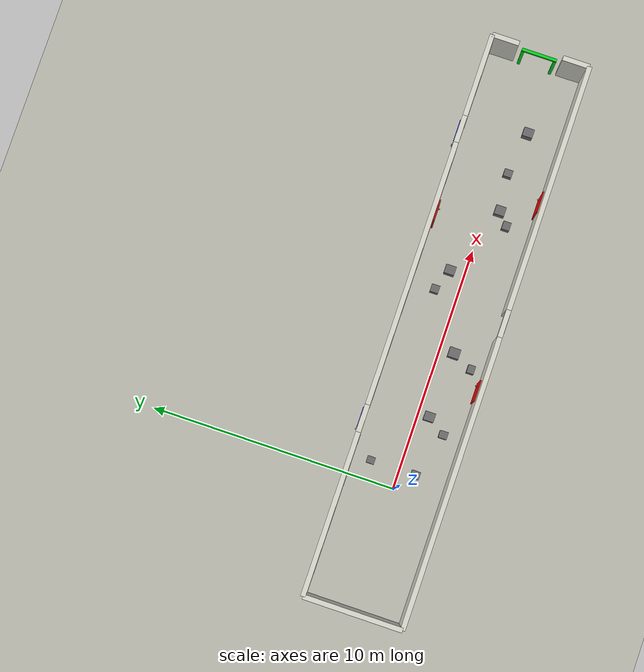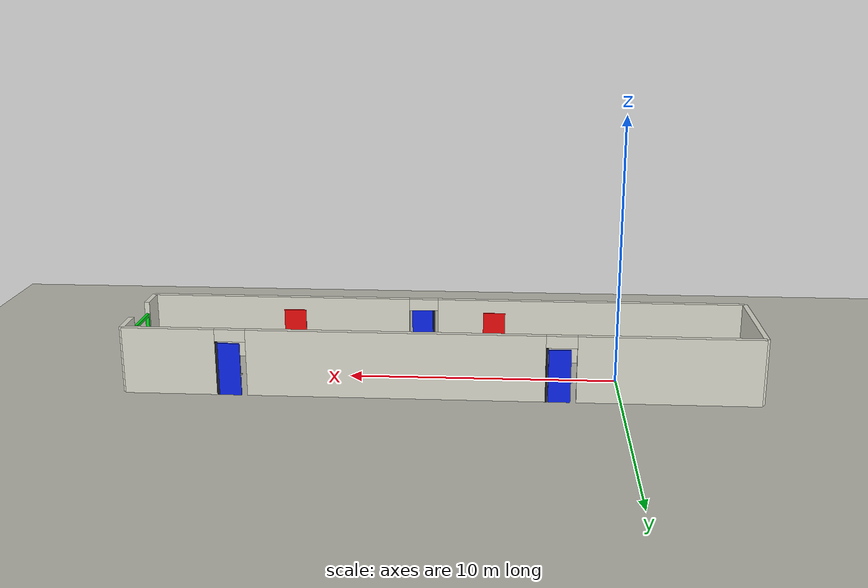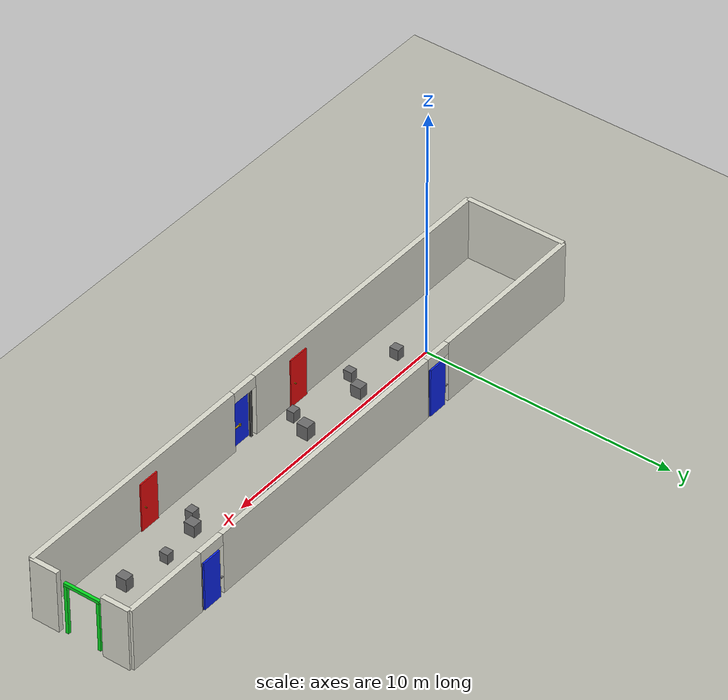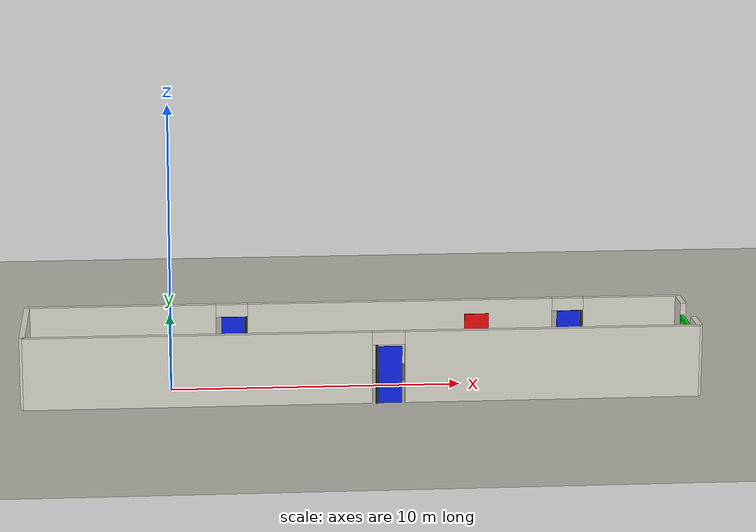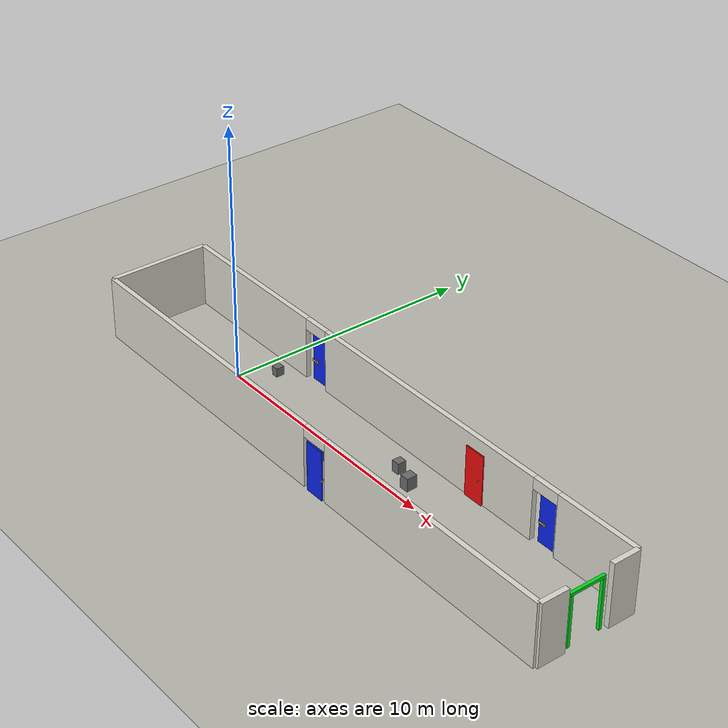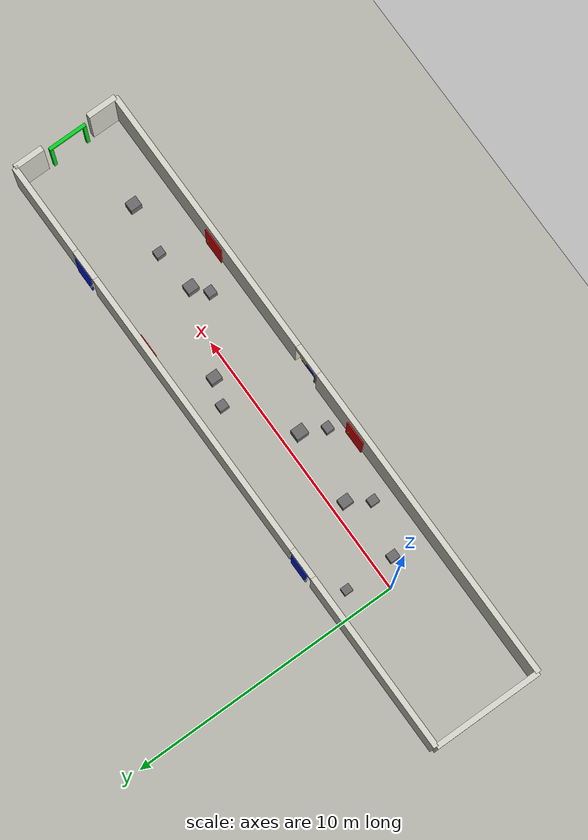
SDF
<?xml version='1.0' encoding='utf-8'?>
<sdf version="1.6">
  <world name="fire_corridor">
    <physics name="default_physics" type="ode">
      <max_step_size>0.001</max_step_size>
      <real_time_update_rate>1000</real_time_update_rate>
    </physics>
    <plugin name="gz::sim::systems::Physics" filename="gz-sim-physics-system" />
    <plugin name="gz::sim::systems::UserCommands" filename="gz-sim-user-commands-system" />
    <plugin name="gz::sim::systems::SceneBroadcaster" filename="gz-sim-scene-broadcaster-system" />
    <plugin name="gz::sim::systems::Sensors" filename="gz-sim-sensors-system">
      <render_engine>ogre2</render_engine>
    </plugin>
    <light type="directional" name="sun">
      <cast_shadows>true</cast_shadows>
      <pose>6 0 10 0 0 0</pose>
      <diffuse>0.9 0.9 0.9 1</diffuse>
      <specular>0.3 0.3 0.3 1</specular>
      <direction>-0.5 0.1 -1</direction>
    </light>
    <light type="point" name="light_mid">
      <pose>8 0 2.8 0 0 0</pose>
      <diffuse>0.8 0.8 0.8 1</diffuse>
      <specular>0.1 0.1 0.1 1</specular>
      <attenuation>
        <range>16</range>
        <linear>0.05</linear>
      </attenuation>
    </light>
    <model name="ground_plane">
      <static>true</static>
      <link name="link">
        <collision name="col">
          <geometry>
            <plane>
              <normal>0 0 1</normal>
              <size>30 10</size>
            </plane>
          </geometry>
        </collision>
        <visual name="vis">
          <geometry>
            <plane>
              <normal>0 0 1</normal>
              <size>30 10</size>
            </plane>
          </geometry>
          <material>
            <ambient>0.72 0.72 0.68 1</ambient>
            <diffuse>0.72 0.72 0.68 1</diffuse>
          </material>
        </visual>
      </link>
    </model>
    <model name="wall_south">
      <static>true</static>
      <pose>6.5 -2 1.25 0 0 0</pose>
      <link name="link">
        <collision name="collision_wall_0">
          <geometry>
            <box>
              <size>11.788571 0.200000 2.500000</size>
            </box>
          </geometry>
          <pose>-5.605714 0 0.000000 0 0 0</pose>
        </collision>
        <visual name="visual_wall_0">
          <geometry>
            <box>
              <size>11.788571 0.200000 2.500000</size>
            </box>
          </geometry>
          <material>
            <ambient>0.85 0.85 0.80 1</ambient>
            <diffuse>0.85 0.85 0.80 1</diffuse>
          </material>
          <pose>-5.605714 0 0.000000 0 0 0</pose>
        </visual>
        <collision name="collision_lintel_0">
          <geometry>
            <box>
              <size>1.116429 0.200000 0.450000</size>
            </box>
          </geometry>
          <pose>0.846786 0 1.025000 0 0 0</pose>
        </collision>
        <visual name="visual_lintel_0">
          <geometry>
            <box>
              <size>1.116429 0.200000 0.450000</size>
            </box>
          </geometry>
          <material>
            <ambient>0.85 0.85 0.80 1</ambient>
            <diffuse>0.85 0.85 0.80 1</diffuse>
          </material>
          <pose>0.846786 0 1.025000 0 0 0</pose>
        </visual>
        <collision name="collision_wall_end">
          <geometry>
            <box>
              <size>10.095000 0.200000 2.500000</size>
            </box>
          </geometry>
          <pose>6.452500 0 0.000000 0 0 0</pose>
        </collision>
        <visual name="visual_wall_end">
          <geometry>
            <box>
              <size>10.095000 0.200000 2.500000</size>
            </box>
          </geometry>
          <material>
            <ambient>0.85 0.85 0.80 1</ambient>
            <diffuse>0.85 0.85 0.80 1</diffuse>
          </material>
          <pose>6.452500 0 0.000000 0 0 0</pose>
        </visual>
      </link>
    </model>
    <model name="wall_north">
      <static>true</static>
      <pose>6.5 2 1.25 0 0 0</pose>
      <link name="link">
        <collision name="collision_wall_0">
          <geometry>
            <box>
              <size>6.588571 0.200000 2.500000</size>
            </box>
          </geometry>
          <pose>-8.205714 0 0.000000 0 0 0</pose>
        </collision>
        <visual name="visual_wall_0">
          <geometry>
            <box>
              <size>6.588571 0.200000 2.500000</size>
            </box>
          </geometry>
          <material>
            <ambient>0.85 0.85 0.80 1</ambient>
            <diffuse>0.85 0.85 0.80 1</diffuse>
          </material>
          <pose>-8.205714 0 0.000000 0 0 0</pose>
        </visual>
        <collision name="collision_lintel_0">
          <geometry>
            <box>
              <size>1.116429 0.200000 0.450000</size>
            </box>
          </geometry>
          <pose>-4.353214 0 1.025000 0 0 0</pose>
        </collision>
        <visual name="visual_lintel_0">
          <geometry>
            <box>
              <size>1.116429 0.200000 0.450000</size>
            </box>
          </geometry>
          <material>
            <ambient>0.85 0.85 0.80 1</ambient>
            <diffuse>0.85 0.85 0.80 1</diffuse>
          </material>
          <pose>-4.353214 0 1.025000 0 0 0</pose>
        </visual>
        <collision name="collision_wall_1">
          <geometry>
            <box>
              <size>10.783571 0.200000 2.500000</size>
            </box>
          </geometry>
          <pose>1.596786 0 0.000000 0 0 0</pose>
        </collision>
        <visual name="visual_wall_1">
          <geometry>
            <box>
              <size>10.783571 0.200000 2.500000</size>
            </box>
          </geometry>
          <material>
            <ambient>0.85 0.85 0.80 1</ambient>
            <diffuse>0.85 0.85 0.80 1</diffuse>
          </material>
          <pose>1.596786 0 0.000000 0 0 0</pose>
        </visual>
        <collision name="collision_lintel_1">
          <geometry>
            <box>
              <size>1.116429 0.200000 0.450000</size>
            </box>
          </geometry>
          <pose>7.546786 0 1.025000 0 0 0</pose>
        </collision>
        <visual name="visual_lintel_1">
          <geometry>
            <box>
              <size>1.116429 0.200000 0.450000</size>
            </box>
          </geometry>
          <material>
            <ambient>0.85 0.85 0.80 1</ambient>
            <diffuse>0.85 0.85 0.80 1</diffuse>
          </material>
          <pose>7.546786 0 1.025000 0 0 0</pose>
        </visual>
        <collision name="collision_wall_end">
          <geometry>
            <box>
              <size>3.395000 0.200000 2.500000</size>
            </box>
          </geometry>
          <pose>9.802500 0 0.000000 0 0 0</pose>
        </collision>
        <visual name="visual_wall_end">
          <geometry>
            <box>
              <size>3.395000 0.200000 2.500000</size>
            </box>
          </geometry>
          <material>
            <ambient>0.85 0.85 0.80 1</ambient>
            <diffuse>0.85 0.85 0.80 1</diffuse>
          </material>
          <pose>9.802500 0 0.000000 0 0 0</pose>
        </visual>
      </link>
    </model>
    <model name="wall_west">
      <static>true</static>
      <pose>-5 0 1.25 0 0 0</pose>
      <link name="link">
        <collision name="col">
          <geometry>
            <box>
              <size>0.2 4 2.5</size>
            </box>
          </geometry>
        </collision>
        <visual name="vis">
          <geometry>
            <box>
              <size>0.2 4 2.5</size>
            </box>
          </geometry>
          <material>
            <ambient>0.85 0.85 0.80 1</ambient>
            <diffuse>0.85 0.85 0.80 1</diffuse>
          </material>
        </visual>
      </link>
    </model>
    <model name="wall_east_upper">
      <static>true</static>
      <pose>18 1.45 1.25 0 0 0</pose>
      <link name="link">
        <collision name="col">
          <geometry>
            <box>
              <size>0.2 1.1 2.5</size>
            </box>
          </geometry>
        </collision>
        <visual name="vis">
          <geometry>
            <box>
              <size>0.2 1.1 2.5</size>
            </box>
          </geometry>
          <material>
            <ambient>0.85 0.85 0.80 1</ambient>
            <diffuse>0.85 0.85 0.80 1</diffuse>
          </material>
        </visual>
      </link>
    </model>
    <model name="wall_east_lower">
      <static>true</static>
      <pose>18 -1.45 1.25 0 0 0</pose>
      <link name="link">
        <collision name="col">
          <geometry>
            <box>
              <size>0.2 1.1 2.5</size>
            </box>
          </geometry>
        </collision>
        <visual name="vis">
          <geometry>
            <box>
              <size>0.2 1.1 2.5</size>
            </box>
          </geometry>
          <material>
            <ambient>0.85 0.85 0.80 1</ambient>
            <diffuse>0.85 0.85 0.80 1</diffuse>
          </material>
        </visual>
      </link>
    </model>
    <model name="door_red1">
      <static>true</static>
      <pose>4.60 -1.86 1.0 0 0 0</pose>
      <link name="link">
        <visual name="panel">
          <geometry>
            <box>
              <size>0.85 0.045 2.0</size>
            </box>
          </geometry>
          <material>
            <ambient>0.92 0.04 0.04 1</ambient>
            <diffuse>0.92 0.04 0.04 1</diffuse>
          </material>
        </visual>
      </link>
    </model>
    <model name="handle_red1">
      <static>true</static>
      <pose>4.84 -1.82 0.95 1.5708 0 0</pose>
      <link name="link">
        <visual name="handle">
          <geometry>
            <cylinder>
              <radius>0.018</radius>
              <length>0.13</length>
            </cylinder>
          </geometry>
          <material>
            <ambient>0.75 0.60 0.05 1</ambient>
            <diffuse>0.75 0.60 0.05 1</diffuse>
          </material>
        </visual>
      </link>
    </model>
    <model name="door_red2">
      <static>true</static>
      <pose>10.80 1.86 1.0 0 0 0</pose>
      <link name="link">
        <visual name="panel">
          <geometry>
            <box>
              <size>0.85 0.045 2.0</size>
            </box>
          </geometry>
          <material>
            <ambient>0.92 0.04 0.04 1</ambient>
            <diffuse>0.92 0.04 0.04 1</diffuse>
          </material>
        </visual>
      </link>
    </model>
    <model name="handle_red2">
      <static>true</static>
      <pose>11.04 1.82 0.95 1.5708 0 0</pose>
      <link name="link">
        <visual name="handle">
          <geometry>
            <cylinder>
              <radius>0.018</radius>
              <length>0.13</length>
            </cylinder>
          </geometry>
          <material>
            <ambient>0.75 0.60 0.05 1</ambient>
            <diffuse>0.75 0.60 0.05 1</diffuse>
          </material>
        </visual>
      </link>
    </model>
    <model name="door_red3">
      <static>true</static>
      <pose>12.40 -1.86 1.0 0 0 0</pose>
      <link name="link">
        <visual name="panel">
          <geometry>
            <box>
              <size>0.85 0.045 2.0</size>
            </box>
          </geometry>
          <material>
            <ambient>0.92 0.04 0.04 1</ambient>
            <diffuse>0.92 0.04 0.04 1</diffuse>
          </material>
        </visual>
      </link>
    </model>
    <model name="handle_red3">
      <static>true</static>
      <pose>12.64 -1.82 0.95 1.5708 0 0</pose>
      <link name="link">
        <visual name="handle">
          <geometry>
            <cylinder>
              <radius>0.018</radius>
              <length>0.13</length>
            </cylinder>
          </geometry>
          <material>
            <ambient>0.75 0.60 0.05 1</ambient>
            <diffuse>0.75 0.60 0.05 1</diffuse>
          </material>
        </visual>
      </link>
    </model>
    <model name="exit_green">
      <static>true</static>
      <pose>17.92 0 1.0 0 0 0</pose>
      <link name="link">
        <visual name="jamb_left">
          <pose>0.0 0.66 0.0 0.0 0.0 0.0</pose>
          <geometry>
            <box>
              <size>0.12 0.12 2.0</size>
            </box>
          </geometry>
          <material>
            <ambient>0.02 0.85 0.12 1</ambient>
            <diffuse>0.02 0.85 0.12 1</diffuse>
          </material>
        </visual>
        <collision name="jamb_left">
          <pose>0.0 0.66 0.0 0.0 0.0 0.0</pose>
          <geometry>
            <box>
              <size>0.12 0.12 2.0</size>
            </box>
          </geometry>
        </collision>
        <visual name="jamb_right">
          <pose>0.0 -0.66 0.0 0.0 0.0 0.0</pose>
          <geometry>
            <box>
              <size>0.12 0.12 2.0</size>
            </box>
          </geometry>
          <material>
            <ambient>0.02 0.85 0.12 1</ambient>
            <diffuse>0.02 0.85 0.12 1</diffuse>
          </material>
        </visual>
        <collision name="jamb_right">
          <pose>0.0 -0.66 0.0 0.0 0.0 0.0</pose>
          <geometry>
            <box>
              <size>0.12 0.12 2.0</size>
            </box>
          </geometry>
        </collision>
        <visual name="lintel">
          <pose>0.0 0.0 1.06 0.0 0.0 0.0</pose>
          <geometry>
            <box>
              <size>0.12 1.44 0.12</size>
            </box>
          </geometry>
          <material>
            <ambient>0.02 0.85 0.12 1</ambient>
            <diffuse>0.02 0.85 0.12 1</diffuse>
          </material>
        </visual>
        <collision name="lintel">
          <pose>0.0 0.0 1.06 0.0 0.0 0.0</pose>
          <geometry>
            <box>
              <size>0.12 1.44 0.12</size>
            </box>
          </geometry>
        </collision>
      </link>
    </model>
    <model name="v5_center_block_00_start">
      <static>true</static>
      <pose>0.80 -0.65 0.22 0 0 0</pose>
      <link name="link">
        <collision name="col">
          <geometry>
            <box>
              <size>0.32 0.36 0.44</size>
            </box>
          </geometry>
        </collision>
        <visual name="vis">
          <geometry>
            <box>
              <size>0.32 0.36 0.44</size>
            </box>
          </geometry>
          <material>
            <ambient>0.42 0.42 0.42 1</ambient>
            <diffuse>0.42 0.42 0.42 1</diffuse>
          </material>
        </visual>
      </link>
    </model>
    <model name="v5_center_block_01_pre_blue1">
      <static>true</static>
      <pose>3.15 -0.45 0.24 0 0 0</pose>
      <link name="link">
        <collision name="col">
          <geometry>
            <box>
              <size>0.36 0.42 0.48</size>
            </box>
          </geometry>
        </collision>
        <visual name="vis">
          <geometry>
            <box>
              <size>0.36 0.42 0.48</size>
            </box>
          </geometry>
          <material>
            <ambient>0.42 0.42 0.42 1</ambient>
            <diffuse>0.42 0.42 0.42 1</diffuse>
          </material>
        </visual>
      </link>
    </model>
    <model name="v5_center_block_02_between_blue1_blue2">
      <static>true</static>
      <pose>5.85 -0.58 0.28 0 0 0</pose>
      <link name="link">
        <collision name="col">
          <geometry>
            <box>
              <size>0.40 0.45 0.56</size>
            </box>
          </geometry>
        </collision>
        <visual name="vis">
          <geometry>
            <box>
              <size>0.40 0.45 0.56</size>
            </box>
          </geometry>
          <material>
            <ambient>0.42 0.42 0.42 1</ambient>
            <diffuse>0.42 0.42 0.42 1</diffuse>
          </material>
        </visual>
      </link>
    </model>
    <model name="v5_center_block_03_pre_blue2">
      <static>true</static>
      <pose>8.95 0.62 0.26 0 0 0</pose>
      <link name="link">
        <collision name="col">
          <geometry>
            <box>
              <size>0.36 0.42 0.52</size>
            </box>
          </geometry>
        </collision>
        <visual name="vis">
          <geometry>
            <box>
              <size>0.36 0.42 0.52</size>
            </box>
          </geometry>
          <material>
            <ambient>0.42 0.42 0.42 1</ambient>
            <diffuse>0.42 0.42 0.42 1</diffuse>
          </material>
        </visual>
      </link>
    </model>
    <model name="v5_center_block_04_between_blue2_blue3">
      <static>true</static>
      <pose>11.85 -0.52 0.24 0 0 0</pose>
      <link name="link">
        <collision name="col">
          <geometry>
            <box>
              <size>0.38 0.42 0.48</size>
            </box>
          </geometry>
        </collision>
        <visual name="vis">
          <geometry>
            <box>
              <size>0.38 0.42 0.48</size>
            </box>
          </geometry>
          <material>
            <ambient>0.42 0.42 0.42 1</ambient>
            <diffuse>0.42 0.42 0.42 1</diffuse>
          </material>
        </visual>
      </link>
    </model>
    <model name="v5_center_block_05_after_blue3">
      <static>true</static>
      <pose>15.20 -0.60 0.26 0 0 0</pose>
      <link name="link">
        <collision name="col">
          <geometry>
            <box>
              <size>0.36 0.42 0.52</size>
            </box>
          </geometry>
        </collision>
        <visual name="vis">
          <geometry>
            <box>
              <size>0.36 0.42 0.52</size>
            </box>
          </geometry>
          <material>
            <ambient>0.42 0.42 0.42 1</ambient>
            <diffuse>0.42 0.42 0.42 1</diffuse>
          </material>
        </visual>
      </link>
    </model>
    <model name="v5_side_clutter_01_right">
      <static>true</static>
      <pose>0.80 1.20 0.18 0 0 0</pose>
      <link name="link">
        <collision name="col">
          <geometry>
            <box>
              <size>0.28 0.32 0.36</size>
            </box>
          </geometry>
        </collision>
        <visual name="vis">
          <geometry>
            <box>
              <size>0.28 0.32 0.36</size>
            </box>
          </geometry>
          <material>
            <ambient>0.42 0.42 0.42 1</ambient>
            <diffuse>0.42 0.42 0.42 1</diffuse>
          </material>
        </visual>
      </link>
    </model>
    <model name="v5_side_clutter_02_left">
      <static>true</static>
      <pose>2.65 -1.20 0.20 0 0 0</pose>
      <link name="link">
        <collision name="col">
          <geometry>
            <box>
              <size>0.30 0.34 0.40</size>
            </box>
          </geometry>
        </collision>
        <visual name="vis">
          <geometry>
            <box>
              <size>0.30 0.34 0.40</size>
            </box>
          </geometry>
          <material>
            <ambient>0.42 0.42 0.42 1</ambient>
            <diffuse>0.42 0.42 0.42 1</diffuse>
          </material>
        </visual>
      </link>
    </model>
    <model name="v5_side_clutter_03_right">
      <static>true</static>
      <pose>5.45 -1.42 0.22 0 0 0</pose>
      <link name="link">
        <collision name="col">
          <geometry>
            <box>
              <size>0.34 0.30 0.44</size>
            </box>
          </geometry>
        </collision>
        <visual name="vis">
          <geometry>
            <box>
              <size>0.34 0.30 0.44</size>
            </box>
          </geometry>
          <material>
            <ambient>0.42 0.42 0.42 1</ambient>
            <diffuse>0.42 0.42 0.42 1</diffuse>
          </material>
        </visual>
      </link>
    </model>
    <model name="v5_side_clutter_04_left">
      <static>true</static>
      <pose>8.05 0.95 0.22 0 0 0</pose>
      <link name="link">
        <collision name="col">
          <geometry>
            <box>
              <size>0.32 0.34 0.44</size>
            </box>
          </geometry>
        </collision>
        <visual name="vis">
          <geometry>
            <box>
              <size>0.32 0.34 0.44</size>
            </box>
          </geometry>
          <material>
            <ambient>0.42 0.42 0.42 1</ambient>
            <diffuse>0.42 0.42 0.42 1</diffuse>
          </material>
        </visual>
      </link>
    </model>
    <model name="v5_side_clutter_05_right">
      <static>true</static>
      <pose>11.35 -0.95 0.22 0 0 0</pose>
      <link name="link">
        <collision name="col">
          <geometry>
            <box>
              <size>0.34 0.32 0.44</size>
            </box>
          </geometry>
        </collision>
        <visual name="vis">
          <geometry>
            <box>
              <size>0.34 0.32 0.44</size>
            </box>
          </geometry>
          <material>
            <ambient>0.42 0.42 0.42 1</ambient>
            <diffuse>0.42 0.42 0.42 1</diffuse>
          </material>
        </visual>
      </link>
    </model>
    <model name="v5_side_clutter_06_left">
      <static>true</static>
      <pose>13.40 -0.35 0.20 0 0 0</pose>
      <link name="link">
        <collision name="col">
          <geometry>
            <box>
              <size>0.30 0.34 0.40</size>
            </box>
          </geometry>
        </collision>
        <visual name="vis">
          <geometry>
            <box>
              <size>0.30 0.34 0.40</size>
            </box>
          </geometry>
          <material>
            <ambient>0.42 0.42 0.42 1</ambient>
            <diffuse>0.42 0.42 0.42 1</diffuse>
          </material>
        </visual>
      </link>
    </model>
    <model name="door_blue1">
      <pose>2.6 2.1 0 0 0 1.5707963267948966</pose>
      <self_collide>true</self_collide>
      <link name="frame">
        <inertial>
          <mass>20</mass>
          <inertia>
            <ixx>1</ixx>
            <iyy>1</iyy>
            <izz>1</izz>
          </inertia>
        </inertial>
        <collision name="hinge_post_collision">
          <pose>-0.08 -0.05 1.0 0 0 0</pose>
          <geometry>
            <box>
              <size>0.10 0.08 2.05</size>
            </box>
          </geometry>
        </collision>
        <visual name="hinge_post">
          <pose>-0.08 -0.05 1.0 0 0 0</pose>
          <geometry>
            <box>
              <size>0.10 0.08 2.05</size>
            </box>
          </geometry>
          <material>
            <ambient>0.12 0.12 0.12 1</ambient>
            <diffuse>0.12 0.12 0.12 1</diffuse>
          </material>
        </visual>
        <collision name="latch_strike_collision">
          <pose>0.055 0.84 0.83 0 0 0</pose>
          <geometry>
            <box>
              <size>0.04 0.08 0.05</size>
            </box>
          </geometry>
          <surface>
            <friction>
              <ode>
                <mu>0.7</mu>
                <mu2>0.7</mu2>
              </ode>
            </friction>
            <contact>
              <ode>
                <kp>800000</kp>
                <kd>40</kd>
              </ode>
            </contact>
          </surface>
        </collision>
        <visual name="latch_strike_visual">
          <pose>0.055 0.84 0.83 0 0 0</pose>
          <geometry>
            <box>
              <size>0.04 0.08 0.05</size>
            </box>
          </geometry>
          <material>
            <ambient>0.55 0.55 0.55 1</ambient>
            <diffuse>0.55 0.55 0.55 1</diffuse>
          </material>
        </visual>
        <sensor name="jamb_contacts" type="contact">
          <contact>
            <collision>hinge_post_collision</collision>
            <topic>/proof/contact/door_blue1/jamb</topic>
          </contact>
          <always_on>true</always_on>
          <update_rate>20</update_rate>
        </sensor>
        <sensor name="strike_contacts" type="contact">
          <contact>
            <collision>latch_strike_collision</collision>
            <topic>/proof/contact/door_blue1/strike</topic>
          </contact>
          <always_on>true</always_on>
          <update_rate>20</update_rate>
        </sensor>
      </link>
      <joint name="frame_fixed" type="fixed">
        <parent>world</parent>
        <child>frame</child>
      </joint>
      <link name="panel">
        <pose>0 0.40 1.0 0 0 0</pose>
        <inertial>
          <mass>18.0</mass>
          <inertia>
            <ixx>6.96</ixx>
            <iyy>6.01</iyy>
            <izz>0.97</izz>
          </inertia>
        </inertial>
        <collision name="panel_collision">
          <geometry>
            <box>
              <size>0.06 0.80 1.98</size>
            </box>
          </geometry>
          <surface>
            <friction>
              <ode>
                <mu>1.5</mu>
                <mu2>1.5</mu2>
              </ode>
            </friction>
            <contact>
              <ode>
                <kp>600000</kp>
                <kd>30</kd>
              </ode>
            </contact>
          </surface>
        </collision>
        <visual name="panel_visual">
          <geometry>
            <box>
              <size>0.06 0.80 1.98</size>
            </box>
          </geometry>
          <material>
            <ambient>0.04 0.14 0.92 1</ambient>
            <diffuse>0.04 0.14 0.92 1</diffuse>
          </material>
        </visual>
        <collision name="handle_mount_collision">
          <pose>-0.078 0.11 -0.17 0 0 0</pose>
          <geometry>
            <box>
              <size>0.05 0.06 0.10</size>
            </box>
          </geometry>
          <surface>
            <friction>
              <ode>
                <mu>0.8</mu>
                <mu2>0.8</mu2>
              </ode>
            </friction>
            <contact>
              <ode>
                <kp>800000</kp>
                <kd>40</kd>
              </ode>
            </contact>
          </surface>
        </collision>
        <visual name="handle_mount_visual">
          <pose>-0.078 0.11 -0.17 0 0 0</pose>
          <geometry>
            <box>
              <size>0.05 0.06 0.10</size>
            </box>
          </geometry>
          <material>
            <ambient>0.8 0.65 0.05 1</ambient>
            <diffuse>0.8 0.65 0.05 1</diffuse>
          </material>
        </visual>
        <sensor name="panel_contact_diagnostic" type="contact">
          <contact>
            <collision>panel_collision</collision>
            <topic>/proof/contact/door_blue1/panel</topic>
          </contact>
          <always_on>true</always_on>
          <update_rate>20</update_rate>
        </sensor>
      </link>
      <link name="lever">
        <pose>-0.075 0.51 0.83 0 0 0</pose>
        <inertial>
          <mass>0.22</mass>
          <inertia>
            <ixx>0.0013</ixx>
            <iyy>0.00015</iyy>
            <izz>0.0013</izz>
          </inertia>
        </inertial>
        <collision name="lever_collision">
          <pose>0 0.13 0 1.5708 0 0</pose>
          <geometry>
            <cylinder>
              <radius>0.026</radius>
              <length>0.26</length>
            </cylinder>
          </geometry>
          <surface>
            <friction>
              <ode>
                <mu>5.0</mu>
                <mu2>5.0</mu2>
              </ode>
            </friction>
            <contact>
              <ode>
                <kp>800000</kp>
                <kd>40</kd>
              </ode>
            </contact>
          </surface>
        </collision>
        <visual name="lever_visual">
          <pose>0 0.13 0 1.5708 0 0</pose>
          <geometry>
            <cylinder>
              <radius>0.026</radius>
              <length>0.26</length>
            </cylinder>
          </geometry>
          <material>
            <ambient>0.8 0.65 0.05 1</ambient>
            <diffuse>0.8 0.65 0.05 1</diffuse>
          </material>
        </visual>
        <collision name="latch_bolt_collision">
          <pose>0.075 0.32 0 0 0 0</pose>
          <geometry>
            <box>
              <size>0.05 0.05 0.03</size>
            </box>
          </geometry>
          <surface>
            <friction>
              <ode>
                <mu>0.35</mu>
                <mu2>0.35</mu2>
              </ode>
            </friction>
            <contact>
              <ode>
                <kp>800000</kp>
                <kd>40</kd>
              </ode>
            </contact>
          </surface>
        </collision>
        <visual name="latch_bolt_visual">
          <pose>0.075 0.32 0 0 0 0</pose>
          <geometry>
            <box>
              <size>0.05 0.05 0.03</size>
            </box>
          </geometry>
          <material>
            <ambient>0.7 0.7 0.7 1</ambient>
            <diffuse>0.7 0.7 0.7 1</diffuse>
          </material>
        </visual>
        <sensor name="lever_contact_diagnostic" type="contact">
          <contact>
            <collision>lever_collision</collision>
            <topic>/proof/contact/door_blue1/lever</topic>
          </contact>
          <always_on>true</always_on>
          <update_rate>20</update_rate>
        </sensor>
        <sensor name="latch_contact_diagnostic" type="contact">
          <contact>
            <collision>latch_bolt_collision</collision>
            <topic>/proof/contact/door_blue1/latch</topic>
          </contact>
          <always_on>true</always_on>
          <update_rate>20</update_rate>
        </sensor>
      </link>
      <joint name="lever_joint" type="revolute">
        <pose>0 0 0 0 0 0</pose>
        <parent>panel</parent>
        <child>lever</child>
        <axis>
          <xyz>1 0 0</xyz>
          <limit>
            <lower>-0.55</lower>
            <upper>0.10</upper>
            <effort>25</effort>
            <velocity>1.2</velocity>
          </limit>
          <dynamics>
            <damping>0.40</damping>
            <friction>0.04</friction>
            <spring_reference>0.0</spring_reference>
            <spring_stiffness>6.0</spring_stiffness>
          </dynamics>
        </axis>
      </joint>
      <joint name="door_hinge" type="revolute">
        <pose>0 -0.40 0 0 0 0</pose>
        <parent>frame</parent>
        <child>panel</child>
        <axis>
          <xyz>0 0 1</xyz>
          <limit>
            <lower>-2.25</lower>
            <upper>0.05</upper>
            <effort>120</effort>
            <velocity>2.0</velocity>
          </limit>
          <dynamics>
            <damping>0.80</damping>
            <friction>2.0</friction>
          </dynamics>
        </axis>
      </joint>
      <plugin filename="gz-sim-joint-state-publisher-system" name="gz::sim::systems::JointStatePublisher">
        <topic>/evaluation/door_blue1/joints</topic>
      </plugin>
    </model>
    <model name="door_blue2">
      <pose>7.0 -2.1 0 0 0 -1.5707963267948966</pose>
      <self_collide>true</self_collide>
      <link name="frame">
        <inertial>
          <mass>20</mass>
          <inertia>
            <ixx>1</ixx>
            <iyy>1</iyy>
            <izz>1</izz>
          </inertia>
        </inertial>
        <collision name="hinge_post_collision">
          <pose>-0.08 -0.05 1.0 0 0 0</pose>
          <geometry>
            <box>
              <size>0.10 0.08 2.05</size>
            </box>
          </geometry>
        </collision>
        <visual name="hinge_post">
          <pose>-0.08 -0.05 1.0 0 0 0</pose>
          <geometry>
            <box>
              <size>0.10 0.08 2.05</size>
            </box>
          </geometry>
          <material>
            <ambient>0.12 0.12 0.12 1</ambient>
            <diffuse>0.12 0.12 0.12 1</diffuse>
          </material>
        </visual>
        <collision name="latch_strike_collision">
          <pose>0.055 0.84 0.83 0 0 0</pose>
          <geometry>
            <box>
              <size>0.04 0.08 0.05</size>
            </box>
          </geometry>
          <surface>
            <friction>
              <ode>
                <mu>0.7</mu>
                <mu2>0.7</mu2>
              </ode>
            </friction>
            <contact>
              <ode>
                <kp>800000</kp>
                <kd>40</kd>
              </ode>
            </contact>
          </surface>
        </collision>
        <visual name="latch_strike_visual">
          <pose>0.055 0.84 0.83 0 0 0</pose>
          <geometry>
            <box>
              <size>0.04 0.08 0.05</size>
            </box>
          </geometry>
          <material>
            <ambient>0.55 0.55 0.55 1</ambient>
            <diffuse>0.55 0.55 0.55 1</diffuse>
          </material>
        </visual>
        <sensor name="jamb_contacts" type="contact">
          <contact>
            <collision>hinge_post_collision</collision>
            <topic>/proof/contact/door_blue2/jamb</topic>
          </contact>
          <always_on>true</always_on>
          <update_rate>20</update_rate>
        </sensor>
        <sensor name="strike_contacts" type="contact">
          <contact>
            <collision>latch_strike_collision</collision>
            <topic>/proof/contact/door_blue2/strike</topic>
          </contact>
          <always_on>true</always_on>
          <update_rate>20</update_rate>
        </sensor>
      </link>
      <joint name="frame_fixed" type="fixed">
        <parent>world</parent>
        <child>frame</child>
      </joint>
      <link name="panel">
        <pose>0 0.40 1.0 0 0 0</pose>
        <inertial>
          <mass>18.0</mass>
          <inertia>
            <ixx>6.96</ixx>
            <iyy>6.01</iyy>
            <izz>0.97</izz>
          </inertia>
        </inertial>
        <collision name="panel_collision">
          <geometry>
            <box>
              <size>0.06 0.80 1.98</size>
            </box>
          </geometry>
          <surface>
            <friction>
              <ode>
                <mu>1.5</mu>
                <mu2>1.5</mu2>
              </ode>
            </friction>
            <contact>
              <ode>
                <kp>600000</kp>
                <kd>30</kd>
              </ode>
            </contact>
          </surface>
        </collision>
        <visual name="panel_visual">
          <geometry>
            <box>
              <size>0.06 0.80 1.98</size>
            </box>
          </geometry>
          <material>
            <ambient>0.04 0.14 0.92 1</ambient>
            <diffuse>0.04 0.14 0.92 1</diffuse>
          </material>
        </visual>
        <collision name="handle_mount_collision">
          <pose>-0.078 0.11 -0.17 0 0 0</pose>
          <geometry>
            <box>
              <size>0.05 0.06 0.10</size>
            </box>
          </geometry>
          <surface>
            <friction>
              <ode>
                <mu>0.8</mu>
                <mu2>0.8</mu2>
              </ode>
            </friction>
            <contact>
              <ode>
                <kp>800000</kp>
                <kd>40</kd>
              </ode>
            </contact>
          </surface>
        </collision>
        <visual name="handle_mount_visual">
          <pose>-0.078 0.11 -0.17 0 0 0</pose>
          <geometry>
            <box>
              <size>0.05 0.06 0.10</size>
            </box>
          </geometry>
          <material>
            <ambient>0.8 0.65 0.05 1</ambient>
            <diffuse>0.8 0.65 0.05 1</diffuse>
          </material>
        </visual>
        <sensor name="panel_contact_diagnostic" type="contact">
          <contact>
            <collision>panel_collision</collision>
            <topic>/proof/contact/door_blue2/panel</topic>
          </contact>
          <always_on>true</always_on>
          <update_rate>20</update_rate>
        </sensor>
      </link>
      <link name="lever">
        <pose>-0.075 0.51 0.83 0 0 0</pose>
        <inertial>
          <mass>0.22</mass>
          <inertia>
            <ixx>0.0013</ixx>
            <iyy>0.00015</iyy>
            <izz>0.0013</izz>
          </inertia>
        </inertial>
        <collision name="lever_collision">
          <pose>0 0.13 0 1.5708 0 0</pose>
          <geometry>
            <cylinder>
              <radius>0.026</radius>
              <length>0.26</length>
            </cylinder>
          </geometry>
          <surface>
            <friction>
              <ode>
                <mu>5.0</mu>
                <mu2>5.0</mu2>
              </ode>
            </friction>
            <contact>
              <ode>
                <kp>800000</kp>
                <kd>40</kd>
              </ode>
            </contact>
          </surface>
        </collision>
        <visual name="lever_visual">
          <pose>0 0.13 0 1.5708 0 0</pose>
          <geometry>
            <cylinder>
              <radius>0.026</radius>
              <length>0.26</length>
            </cylinder>
          </geometry>
          <material>
            <ambient>0.8 0.65 0.05 1</ambient>
            <diffuse>0.8 0.65 0.05 1</diffuse>
          </material>
        </visual>
        <collision name="latch_bolt_collision">
          <pose>0.075 0.32 0 0 0 0</pose>
          <geometry>
            <box>
              <size>0.05 0.05 0.03</size>
            </box>
          </geometry>
          <surface>
            <friction>
              <ode>
                <mu>0.35</mu>
                <mu2>0.35</mu2>
              </ode>
            </friction>
            <contact>
              <ode>
                <kp>800000</kp>
                <kd>40</kd>
              </ode>
            </contact>
          </surface>
        </collision>
        <visual name="latch_bolt_visual">
          <pose>0.075 0.32 0 0 0 0</pose>
          <geometry>
            <box>
              <size>0.05 0.05 0.03</size>
            </box>
          </geometry>
          <material>
            <ambient>0.7 0.7 0.7 1</ambient>
            <diffuse>0.7 0.7 0.7 1</diffuse>
          </material>
        </visual>
        <sensor name="lever_contact_diagnostic" type="contact">
          <contact>
            <collision>lever_collision</collision>
            <topic>/proof/contact/door_blue2/lever</topic>
          </contact>
          <always_on>true</always_on>
          <update_rate>20</update_rate>
        </sensor>
        <sensor name="latch_contact_diagnostic" type="contact">
          <contact>
            <collision>latch_bolt_collision</collision>
            <topic>/proof/contact/door_blue2/latch</topic>
          </contact>
          <always_on>true</always_on>
          <update_rate>20</update_rate>
        </sensor>
      </link>
      <joint name="lever_joint" type="revolute">
        <pose>0 0 0 0 0 0</pose>
        <parent>panel</parent>
        <child>lever</child>
        <axis>
          <xyz>1 0 0</xyz>
          <limit>
            <lower>-0.55</lower>
            <upper>0.10</upper>
            <effort>25</effort>
            <velocity>1.2</velocity>
          </limit>
          <dynamics>
            <damping>0.40</damping>
            <friction>0.04</friction>
            <spring_reference>0.0</spring_reference>
            <spring_stiffness>6.0</spring_stiffness>
          </dynamics>
        </axis>
      </joint>
      <joint name="door_hinge" type="revolute">
        <pose>0 -0.40 0 0 0 0</pose>
        <parent>frame</parent>
        <child>panel</child>
        <axis>
          <xyz>0 0 1</xyz>
          <limit>
            <lower>-2.25</lower>
            <upper>0.05</upper>
            <effort>120</effort>
            <velocity>2.0</velocity>
          </limit>
          <dynamics>
            <damping>0.80</damping>
            <friction>2.0</friction>
          </dynamics>
        </axis>
      </joint>
      <plugin filename="gz-sim-joint-state-publisher-system" name="gz::sim::systems::JointStatePublisher">
        <topic>/evaluation/door_blue2/joints</topic>
      </plugin>
    </model>
    <model name="door_blue3">
      <pose>14.5 2.1 0 0 0 1.5707963267948966</pose>
      <self_collide>true</self_collide>
      <link name="frame">
        <inertial>
          <mass>20</mass>
          <inertia>
            <ixx>1</ixx>
            <iyy>1</iyy>
            <izz>1</izz>
          </inertia>
        </inertial>
        <collision name="hinge_post_collision">
          <pose>-0.08 -0.05 1.0 0 0 0</pose>
          <geometry>
            <box>
              <size>0.10 0.08 2.05</size>
            </box>
          </geometry>
        </collision>
        <visual name="hinge_post">
          <pose>-0.08 -0.05 1.0 0 0 0</pose>
          <geometry>
            <box>
              <size>0.10 0.08 2.05</size>
            </box>
          </geometry>
          <material>
            <ambient>0.12 0.12 0.12 1</ambient>
            <diffuse>0.12 0.12 0.12 1</diffuse>
          </material>
        </visual>
        <collision name="latch_strike_collision">
          <pose>0.055 0.84 0.83 0 0 0</pose>
          <geometry>
            <box>
              <size>0.04 0.08 0.05</size>
            </box>
          </geometry>
          <surface>
            <friction>
              <ode>
                <mu>0.7</mu>
                <mu2>0.7</mu2>
              </ode>
            </friction>
            <contact>
              <ode>
                <kp>800000</kp>
                <kd>40</kd>
              </ode>
            </contact>
          </surface>
        </collision>
        <visual name="latch_strike_visual">
          <pose>0.055 0.84 0.83 0 0 0</pose>
          <geometry>
            <box>
              <size>0.04 0.08 0.05</size>
            </box>
          </geometry>
          <material>
            <ambient>0.55 0.55 0.55 1</ambient>
            <diffuse>0.55 0.55 0.55 1</diffuse>
          </material>
        </visual>
        <sensor name="jamb_contacts" type="contact">
          <contact>
            <collision>hinge_post_collision</collision>
            <topic>/proof/contact/door_blue3/jamb</topic>
          </contact>
          <always_on>true</always_on>
          <update_rate>20</update_rate>
        </sensor>
        <sensor name="strike_contacts" type="contact">
          <contact>
            <collision>latch_strike_collision</collision>
            <topic>/proof/contact/door_blue3/strike</topic>
          </contact>
          <always_on>true</always_on>
          <update_rate>20</update_rate>
        </sensor>
      </link>
      <joint name="frame_fixed" type="fixed">
        <parent>world</parent>
        <child>frame</child>
      </joint>
      <link name="panel">
        <pose>0 0.40 1.0 0 0 0</pose>
        <inertial>
          <mass>18.0</mass>
          <inertia>
            <ixx>6.96</ixx>
            <iyy>6.01</iyy>
            <izz>0.97</izz>
          </inertia>
        </inertial>
        <collision name="panel_collision">
          <geometry>
            <box>
              <size>0.06 0.80 1.98</size>
            </box>
          </geometry>
          <surface>
            <friction>
              <ode>
                <mu>1.5</mu>
                <mu2>1.5</mu2>
              </ode>
            </friction>
            <contact>
              <ode>
                <kp>600000</kp>
                <kd>30</kd>
              </ode>
            </contact>
          </surface>
        </collision>
        <visual name="panel_visual">
          <geometry>
            <box>
              <size>0.06 0.80 1.98</size>
            </box>
          </geometry>
          <material>
            <ambient>0.04 0.14 0.92 1</ambient>
            <diffuse>0.04 0.14 0.92 1</diffuse>
          </material>
        </visual>
        <collision name="handle_mount_collision">
          <pose>-0.078 0.11 -0.17 0 0 0</pose>
          <geometry>
            <box>
              <size>0.05 0.06 0.10</size>
            </box>
          </geometry>
          <surface>
            <friction>
              <ode>
                <mu>0.8</mu>
                <mu2>0.8</mu2>
              </ode>
            </friction>
            <contact>
              <ode>
                <kp>800000</kp>
                <kd>40</kd>
              </ode>
            </contact>
          </surface>
        </collision>
        <visual name="handle_mount_visual">
          <pose>-0.078 0.11 -0.17 0 0 0</pose>
          <geometry>
            <box>
              <size>0.05 0.06 0.10</size>
            </box>
          </geometry>
          <material>
            <ambient>0.8 0.65 0.05 1</ambient>
            <diffuse>0.8 0.65 0.05 1</diffuse>
          </material>
        </visual>
        <sensor name="panel_contact_diagnostic" type="contact">
          <contact>
            <collision>panel_collision</collision>
            <topic>/proof/contact/door_blue3/panel</topic>
          </contact>
          <always_on>true</always_on>
          <update_rate>20</update_rate>
        </sensor>
      </link>
      <link name="lever">
        <pose>-0.075 0.51 0.83 0 0 0</pose>
        <inertial>
          <mass>0.22</mass>
          <inertia>
            <ixx>0.0013</ixx>
            <iyy>0.00015</iyy>
            <izz>0.0013</izz>
          </inertia>
        </inertial>
        <collision name="lever_collision">
          <pose>0 0.13 0 1.5708 0 0</pose>
          <geometry>
            <cylinder>
              <radius>0.026</radius>
              <length>0.26</length>
            </cylinder>
          </geometry>
          <surface>
            <friction>
              <ode>
                <mu>5.0</mu>
                <mu2>5.0</mu2>
              </ode>
            </friction>
            <contact>
              <ode>
                <kp>800000</kp>
                <kd>40</kd>
              </ode>
            </contact>
          </surface>
        </collision>
        <visual name="lever_visual">
          <pose>0 0.13 0 1.5708 0 0</pose>
          <geometry>
            <cylinder>
              <radius>0.026</radius>
              <length>0.26</length>
            </cylinder>
          </geometry>
          <material>
            <ambient>0.8 0.65 0.05 1</ambient>
            <diffuse>0.8 0.65 0.05 1</diffuse>
          </material>
        </visual>
        <collision name="latch_bolt_collision">
          <pose>0.075 0.32 0 0 0 0</pose>
          <geometry>
            <box>
              <size>0.05 0.05 0.03</size>
            </box>
          </geometry>
          <surface>
            <friction>
              <ode>
                <mu>0.35</mu>
                <mu2>0.35</mu2>
              </ode>
            </friction>
            <contact>
              <ode>
                <kp>800000</kp>
                <kd>40</kd>
              </ode>
            </contact>
          </surface>
        </collision>
        <visual name="latch_bolt_visual">
          <pose>0.075 0.32 0 0 0 0</pose>
          <geometry>
            <box>
              <size>0.05 0.05 0.03</size>
            </box>
          </geometry>
          <material>
            <ambient>0.7 0.7 0.7 1</ambient>
            <diffuse>0.7 0.7 0.7 1</diffuse>
          </material>
        </visual>
        <sensor name="lever_contact_diagnostic" type="contact">
          <contact>
            <collision>lever_collision</collision>
            <topic>/proof/contact/door_blue3/lever</topic>
          </contact>
          <always_on>true</always_on>
          <update_rate>20</update_rate>
        </sensor>
        <sensor name="latch_contact_diagnostic" type="contact">
          <contact>
            <collision>latch_bolt_collision</collision>
            <topic>/proof/contact/door_blue3/latch</topic>
          </contact>
          <always_on>true</always_on>
          <update_rate>20</update_rate>
        </sensor>
      </link>
      <joint name="lever_joint" type="revolute">
        <pose>0 0 0 0 0 0</pose>
        <parent>panel</parent>
        <child>lever</child>
        <axis>
          <xyz>1 0 0</xyz>
          <limit>
            <lower>-0.55</lower>
            <upper>0.10</upper>
            <effort>25</effort>
            <velocity>1.2</velocity>
          </limit>
          <dynamics>
            <damping>0.40</damping>
            <friction>0.04</friction>
            <spring_reference>0.0</spring_reference>
            <spring_stiffness>6.0</spring_stiffness>
          </dynamics>
        </axis>
      </joint>
      <joint name="door_hinge" type="revolute">
        <pose>0 -0.40 0 0 0 0</pose>
        <parent>frame</parent>
        <child>panel</child>
        <axis>
          <xyz>0 0 1</xyz>
          <limit>
            <lower>-2.25</lower>
            <upper>0.05</upper>
            <effort>120</effort>
            <velocity>2.0</velocity>
          </limit>
          <dynamics>
            <damping>0.80</damping>
            <friction>2.0</friction>
          </dynamics>
        </axis>
      </joint>
      <plugin filename="gz-sim-joint-state-publisher-system" name="gz::sim::systems::JointStatePublisher">
        <topic>/evaluation/door_blue3/joints</topic>
      </plugin>
    </model>
    <plugin name="gz::sim::systems::Contact" filename="ignition-gazebo-contact-system" />
    <plugin name="fire_robot::ContactAudit" filename="libfire_robot_contact_audit.so" />
    <model name="proof_perspective_camera">
      <static>true</static>
      <pose>-4 0 3 0 .65 0</pose>
      <link name="link">
        <sensor name="proof_perspective_camera" type="camera">
          <always_on>true</always_on>
          <update_rate>15</update_rate>
          <topic>/proof/perspective/image</topic>
          <camera name="proof_perspective">
            <horizontal_fov>1.18</horizontal_fov>
            <image>
              <width>640</width>
              <height>360</height>
              <format>R8G8B8</format>
            </image>
            <clip>
              <near>0.10</near>
              <far>20.0</far>
            </clip>
          </camera>
        </sensor>
      </link>
    </model>
    <plugin filename="libfire_robot_film_camera.so" name="fire_robot::FilmCamera" />
  </world>
</sdf>
